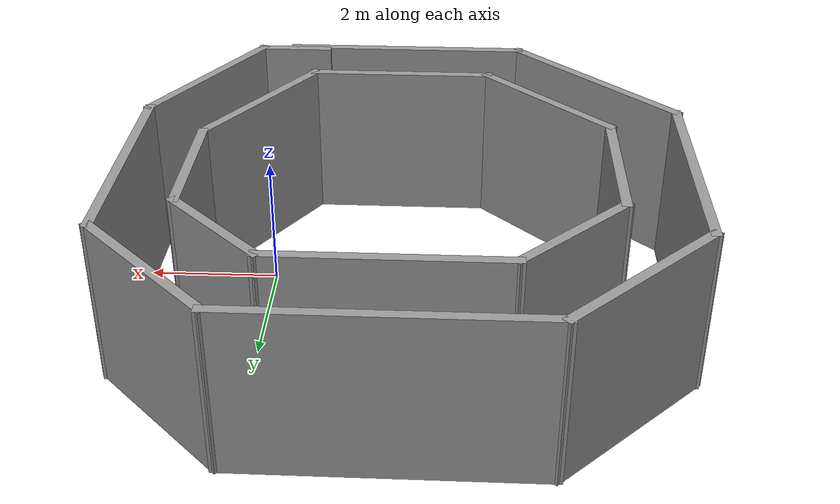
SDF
<?xml version='1.0'?>
<sdf version='1.6'>
  <model name='octagon'>
    <pose frame=''>-2.10612 0.503062 0 0 -0 0</pose>
    <link name='Wall_10'>
      <collision name='Wall_10_Collision'>
        <geometry>
          <box>
            <size>3 0.15 2.5</size>
          </box>
        </geometry>
        <pose frame=''>0 0 1.25 0 -0 0</pose>
      </collision>
      <visual name='Wall_10_Visual'>
        <pose frame=''>0 0 1.25 0 -0 0</pose>
        <geometry>
          <box>
            <size>3 0.15 2.5</size>
          </box>
        </geometry>
        <material>
          <script>
            <uri>file://media/materials/scripts/gazebo.material</uri>
            <name>Gazebo/Grey</name>
          </script>
          <ambient>1 1 1 1</ambient>
        </material>
        <meta>
          <layer>0</layer>
        </meta>
      </visual>
      <pose frame=''>0.233156 -2.91909 0 0 -0 0</pose>
    </link>
    <link name='Wall_11'>
      <collision name='Wall_11_Collision'>
        <geometry>
          <box>
            <size>2.84207 0.15 2.5</size>
          </box>
        </geometry>
        <pose frame=''>0 0 1.25 0 -0 0</pose>
      </collision>
      <visual name='Wall_11_Visual'>
        <pose frame=''>0 0 1.25 0 -0 0</pose>
        <geometry>
          <box>
            <size>2.84207 0.15 2.5</size>
          </box>
        </geometry>
        <material>
          <script>
            <uri>file://media/materials/scripts/gazebo.material</uri>
            <name>Gazebo/Grey</name>
          </script>
          <ambient>1 1 1 1</ambient>
        </material>
        <meta>
          <layer>0</layer>
        </meta>
      </visual>
      <pose frame=''>2.38545 -1.78646 0 0 -0 0.999971</pose>
    </link>
    <link name='Wall_14'>
      <collision name='Wall_14_Collision'>
        <geometry>
          <box>
            <size>4 0.15 2.5</size>
          </box>
        </geometry>
        <pose frame=''>0 0 1.25 0 -0 0</pose>
      </collision>
      <visual name='Wall_14_Visual'>
        <pose frame=''>0 0 1.25 0 -0 0</pose>
        <geometry>
          <box>
            <size>4 0.15 2.5</size>
          </box>
        </geometry>
        <material>
          <script>
            <uri>file://media/materials/scripts/gazebo.material</uri>
            <name>Gazebo/Grey</name>
          </script>
          <ambient>1 1 1 1</ambient>
        </material>
        <meta>
          <layer>0</layer>
        </meta>
      </visual>
      <pose frame=''>0.191942 -3.99203 0 0 -0 3.14159</pose>
    </link>
    <link name='Wall_15'>
      <collision name='Wall_15_Collision'>
        <geometry>
          <box>
            <size>3.5 0.15 2.5</size>
          </box>
        </geometry>
        <pose frame=''>0 0 1.25 0 -0 0</pose>
      </collision>
      <visual name='Wall_15_Visual'>
        <pose frame=''>0 0 1.25 0 -0 0</pose>
        <geometry>
          <box>
            <size>3.5 0.15 2.5</size>
          </box>
        </geometry>
        <material>
          <script>
            <uri>file://media/materials/scripts/gazebo.material</uri>
            <name>Gazebo/Grey</name>
          </script>
          <ambient>1 1 1 1</ambient>
        </material>
        <meta>
          <layer>0</layer>
        </meta>
      </visual>
      <pose frame=''>-2.91746 -2.80763 0 0 -0 2.35619</pose>
    </link>
    <link name='Wall_16'>
      <collision name='Wall_16_Collision'>
        <geometry>
          <box>
            <size>3.75 0.15 2.5</size>
          </box>
        </geometry>
        <pose frame=''>0 0 1.25 0 -0 0</pose>
      </collision>
      <visual name='Wall_16_Visual'>
        <pose frame=''>0 0 1.25 0 -0 0</pose>
        <geometry>
          <box>
            <size>3.75 0.15 2.5</size>
          </box>
        </geometry>
        <material>
          <script>
            <uri>file://media/materials/scripts/gazebo.material</uri>
            <name>Gazebo/Grey</name>
          </script>
          <ambient>1 1 1 1</ambient>
        </material>
        <meta>
          <layer>0</layer>
        </meta>
      </visual>
      <pose frame=''>-4.10187 0.176777 0 0 -0 1.5708</pose>
    </link>
    <link name='Wall_17'>
      <collision name='Wall_17_Collision'>
        <geometry>
          <box>
            <size>3 0.15 2.5</size>
          </box>
        </geometry>
        <pose frame=''>0 0 1.25 0 -0 0</pose>
      </collision>
      <visual name='Wall_17_Visual'>
        <pose frame=''>0 0 1.25 0 -0 0</pose>
        <geometry>
          <box>
            <size>3 0.15 2.5</size>
          </box>
        </geometry>
        <material>
          <script>
            <uri>file://media/materials/scripts/gazebo.material</uri>
            <name>Gazebo/Grey</name>
          </script>
          <ambient>1 1 1 1</ambient>
        </material>
        <meta>
          <layer>0</layer>
        </meta>
      </visual>
      <pose frame=''>-3.09424 2.9844 0 0 -0 0.785398</pose>
    </link>
    <link name='Wall_18'>
      <collision name='Wall_18_Collision'>
        <geometry>
          <box>
            <size>4.5 0.15 2.5</size>
          </box>
        </geometry>
        <pose frame=''>0 0 1.25 0 -0 0</pose>
      </collision>
      <visual name='Wall_18_Visual'>
        <pose frame=''>0 0 1.25 0 -0 0</pose>
        <geometry>
          <box>
            <size>4.5 0.15 2.5</size>
          </box>
        </geometry>
        <material>
          <script>
            <uri>file://media/materials/scripts/gazebo.material</uri>
            <name>Gazebo/Grey</name>
          </script>
          <ambient>1 1 1 1</ambient>
        </material>
        <meta>
          <layer>0</layer>
        </meta>
      </visual>
      <pose frame=''>0.088389 3.99203 0 0 -0 0</pose>
    </link>
    <link name='Wall_19'>
      <collision name='Wall_19_Collision'>
        <geometry>
          <box>
            <size>2.75 0.15 2.5</size>
          </box>
        </geometry>
        <pose frame=''>0 0 1.25 0 -0 0</pose>
      </collision>
      <visual name='Wall_19_Visual'>
        <pose frame=''>0 0 1.25 0 -0 0</pose>
        <geometry>
          <box>
            <size>2.75 0.15 2.5</size>
          </box>
        </geometry>
        <material>
          <script>
            <uri>file://media/materials/scripts/gazebo.material</uri>
            <name>Gazebo/Grey</name>
          </script>
          <ambient>1 1 1 1</ambient>
        </material>
        <meta>
          <layer>0</layer>
        </meta>
      </visual>
      <pose frame=''>3.18263 3.07279 0 0 -0 -0.785398</pose>
    </link>
    <link name='Wall_20'>
      <collision name='Wall_20_Collision'>
        <geometry>
          <box>
            <size>3.75 0.15 2.5</size>
          </box>
        </geometry>
        <pose frame=''>0 0 1.25 0 -0 0</pose>
      </collision>
      <visual name='Wall_20_Visual'>
        <pose frame=''>0 0 1.25 0 -0 0</pose>
        <geometry>
          <box>
            <size>3.75 0.15 2.5</size>
          </box>
        </geometry>
        <material>
          <script>
            <uri>file://media/materials/scripts/gazebo.material</uri>
            <name>Gazebo/Grey</name>
          </script>
          <ambient>1 1 1 1</ambient>
        </material>
        <meta>
          <layer>0</layer>
        </meta>
      </visual>
      <pose frame=''>4.10187 0.353553 0 0 -0 -1.5708</pose>
    </link>
    <link name='Wall_21'>
      <collision name='Wall_21_Collision'>
        <geometry>
          <box>
            <size>3 0.15 2.5</size>
          </box>
        </geometry>
        <pose frame=''>0 0 1.25 0 -0 0</pose>
      </collision>
      <visual name='Wall_21_Visual'>
        <pose frame=''>0 0 1.25 0 -0 0</pose>
        <geometry>
          <box>
            <size>3 0.15 2.5</size>
          </box>
        </geometry>
        <material>
          <script>
            <uri>file://media/materials/scripts/gazebo.material</uri>
            <name>Gazebo/Grey</name>
          </script>
          <ambient>1 1 1 1</ambient>
        </material>
        <meta>
          <layer>0</layer>
        </meta>
      </visual>
      <pose frame=''>3.38937 -2.68053 0 0 -0 -2.0944</pose>
    </link>
    <link name='Wall_22'>
      <collision name='Wall_22_Collision'>
        <geometry>
          <box>
            <size>1.25 0.15 2.5</size>
          </box>
        </geometry>
        <pose frame=''>0 0 1.25 0 -0 0</pose>
      </collision>
      <visual name='Wall_22_Visual'>
        <pose frame=''>0 0 1.25 0 -0 0</pose>
        <geometry>
          <box>
            <size>1.25 0.15 2.5</size>
          </box>
        </geometry>
        <material>
          <script>
            <uri>file://media/materials/scripts/gazebo.material</uri>
            <name>Gazebo/Grey</name>
          </script>
          <ambient>1 1 1 1</ambient>
        </material>
        <meta>
          <layer>0</layer>
        </meta>
      </visual>
      <pose frame=''>2.12687 -3.91462 0 0 -0 3.14159</pose>
    </link>
    <link name='Wall_4'>
      <collision name='Wall_4_Collision'>
        <geometry>
          <box>
            <size>2.25 0.15 2.5</size>
          </box>
        </geometry>
        <pose frame=''>0 0 1.25 0 -0 0</pose>
      </collision>
      <visual name='Wall_4_Visual'>
        <pose frame=''>0 0 1.25 0 -0 0</pose>
        <geometry>
          <box>
            <size>2.25 0.15 2.5</size>
          </box>
        </geometry>
        <material>
          <script>
            <uri>file://media/materials/scripts/gazebo.material</uri>
            <name>Gazebo/Grey</name>
          </script>
          <ambient>1 1 1 1</ambient>
        </material>
        <meta>
          <layer>0</layer>
        </meta>
      </visual>
      <pose frame=''>3.11275 0.396163 0 0 -0 1.5708</pose>
    </link>
    <link name='Wall_5'>
      <collision name='Wall_5_Collision'>
        <geometry>
          <box>
            <size>2 0.15 2.5</size>
          </box>
        </geometry>
        <pose frame=''>0 0 1.25 0 -0 0</pose>
      </collision>
      <visual name='Wall_5_Visual'>
        <pose frame=''>0 0 1.25 0 -0 0</pose>
        <geometry>
          <box>
            <size>2 0.15 2.5</size>
          </box>
        </geometry>
        <material>
          <script>
            <uri>file://media/materials/scripts/gazebo.material</uri>
            <name>Gazebo/Grey</name>
          </script>
          <ambient>1 1 1 1</ambient>
        </material>
        <meta>
          <layer>0</layer>
        </meta>
      </visual>
      <pose frame=''>2.45868 2.10024 0 0 -0 2.35619</pose>
    </link>
    <link name='Wall_6'>
      <collision name='Wall_6_Collision'>
        <geometry>
          <box>
            <size>3.5 0.15 2.5</size>
          </box>
        </geometry>
        <pose frame=''>0 0 1.25 0 -0 0</pose>
      </collision>
      <visual name='Wall_6_Visual'>
        <pose frame=''>0 0 1.25 0 -0 0</pose>
        <geometry>
          <box>
            <size>3.5 0.15 2.5</size>
          </box>
        </geometry>
        <material>
          <script>
            <uri>file://media/materials/scripts/gazebo.material</uri>
            <name>Gazebo/Grey</name>
          </script>
          <ambient>1 1 1 1</ambient>
        </material>
        <meta>
          <layer>0</layer>
        </meta>
      </visual>
      <pose frame=''>0.129603 2.75431 0 0 -0 3.14159</pose>
    </link>
    <link name='Wall_7'>
      <collision name='Wall_7_Collision'>
        <geometry>
          <box>
            <size>2.25 0.15 2.5</size>
          </box>
        </geometry>
        <pose frame=''>0 0 1.25 0 -0 0</pose>
      </collision>
      <visual name='Wall_7_Visual'>
        <pose frame=''>0 0 1.25 0 -0 0</pose>
        <geometry>
          <box>
            <size>2.25 0.15 2.5</size>
          </box>
        </geometry>
        <material>
          <script>
            <uri>file://media/materials/scripts/gazebo.material</uri>
            <name>Gazebo/Grey</name>
          </script>
          <ambient>1 1 1 1</ambient>
        </material>
        <meta>
          <layer>0</layer>
        </meta>
      </visual>
      <pose frame=''>-2.28786 2.01185 0 0 -0 -2.35619</pose>
    </link>
    <link name='Wall_8'>
      <collision name='Wall_8_Collision'>
        <geometry>
          <box>
            <size>2.5 0.15 2.5</size>
          </box>
        </geometry>
        <pose frame=''>0 0 1.25 0 -0 0</pose>
      </collision>
      <visual name='Wall_8_Visual'>
        <pose frame=''>0 0 1.25 0 -0 0</pose>
        <geometry>
          <box>
            <size>2.5 0.15 2.5</size>
          </box>
        </geometry>
        <material>
          <script>
            <uri>file://media/materials/scripts/gazebo.material</uri>
            <name>Gazebo/Grey</name>
          </script>
          <ambient>1 1 1 1</ambient>
        </material>
        <meta>
          <layer>0</layer>
        </meta>
      </visual>
      <pose frame=''>-3.03032 0.094386 0 0 -0 -1.5708</pose>
    </link>
    <link name='Wall_9'>
      <collision name='Wall_9_Collision'>
        <geometry>
          <box>
            <size>2.75 0.15 2.5</size>
          </box>
        </geometry>
        <pose frame=''>0 0 1.25 0 -0 0</pose>
      </collision>
      <visual name='Wall_9_Visual'>
        <pose frame=''>0 0 1.25 0 -0 0</pose>
        <geometry>
          <box>
            <size>2.75 0.15 2.5</size>
          </box>
        </geometry>
        <material>
          <script>
            <uri>file://media/materials/scripts/gazebo.material</uri>
            <name>Gazebo/Grey</name>
          </script>
          <ambient>1 1 1 1</ambient>
        </material>
        <meta>
          <layer>0</layer>
        </meta>
      </visual>
      <pose frame=''>-2.11108 -1.99985 0 0 -0 -0.785398</pose>
    </link>
    <static>1</static>
  </model>
</sdf>
